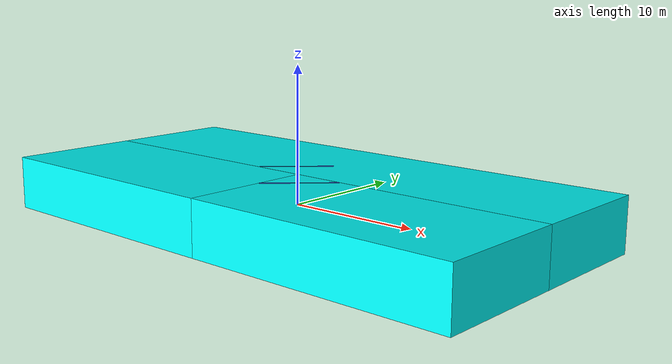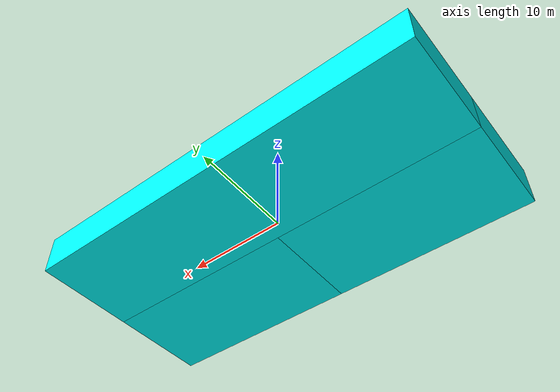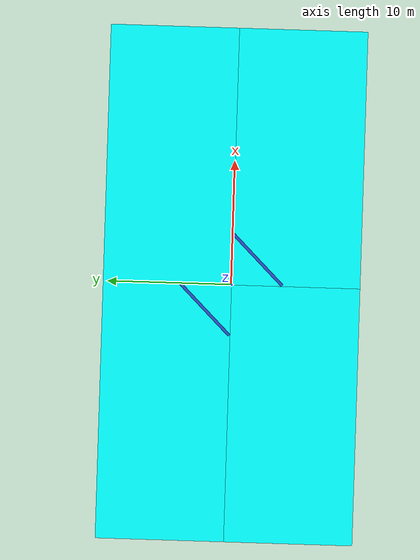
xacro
<?xml version="1.0"?>
<robot name="arena1" xmlns:xacro="http://www.ros.org/wiki/xacro">
  <xacro:include filename="$(find turtlebot3_description)/urdf/arena.gazebo.xacro"/>

<!-- #Create Cuboid -->
<xacro:macro name="cuboid" params="name origin_xyz origin_rpy m l b h">
  <link name="${name}">

   <inertial>
     <origin rpy="${origin_rpy}" xyz="${origin_xyz}" />
     <mass value="${m}"/>
     <inertia ixx="${m*((b*b) + (h*h))/12}"  ixy="0"  ixz="0" iyy="${m*((l*l) + (h*h))/12}" iyz="0" izz="${m*((b*b) + (l*l))/12}" />
   </inertial>

   <visual>
     <origin rpy="${origin_rpy}" xyz="${origin_xyz}" />
     <geometry>
       <box size="${l} ${b} ${h}" />
     </geometry>
     <material name="Cyan">
       <color rgba="0 1.0 1.0 1.0"/>
     </material>
   </visual>

   <collision>
    <origin rpy="${origin_rpy}" xyz="${origin_xyz}" />
    <geometry>
       <box size="${l} ${b} ${h}" />
     </geometry>
   </collision>
  </link>

</xacro:macro>

<!-- Create cylinder -->
<xacro:macro name="cylinderical" params="name origin_xyz origin_rpy m l r">
  <link name="${name}">
       <visual>
        <origin rpy="${origin_rpy}" xyz="${origin_xyz}" />
         <geometry>
           <cylinder length="${l}" radius="${r}"/>
         </geometry>
         <material name="blue">
         </material>
       </visual>
       <collision>
        <origin rpy="${origin_rpy}" xyz="${origin_xyz}" />
         <geometry>
           <cylinder length="${l}" radius="${r}"/>
         </geometry>
          <surface>
            <friction>
              <ode>
                <mu>10000</mu>
                <mu2>10000</mu2>
                <slip1>1.0</slip1>
                <slip2>1.0</slip2>
                <kp value="1000" />
                <kd value="1000" />
              </ode>
            </friction>
          </surface>
       </collision>
       <inertial>
        <origin rpy="${origin_rpy}" xyz="${origin_xyz}" />
         <mass value="${m}"/>
         <inertia ixx="${m*((3*r*r) + (l*l))/12}" ixy="0.0" ixz="0.0" iyy="${m*((3*l*l) + (l*l))/12}" iyz="0.0" izz="${m*l*l/12}"/>
       </inertial>
     </link>

</xacro:macro>

<!-- joints -->
  <xacro:macro name="calljoint" params="name type axis_xyz origin_rpy origin_xyz parent child">
    <joint name="${name}" type="${type}">
      <parent link="${parent}" />
      <child link="${child}" />
      <axis xyz="${axis_xyz}" />
      <limit effort="1000.0" lower="-3.14" upper="3.14" velocity="0.5" />
      <dynamics damping="0.0" friction="0.0"/>
      <origin rpy="${origin_rpy}" xyz="${origin_xyz}" />
    </joint>
  </xacro:macro>

<xacro:cuboid name="plate1" origin_xyz="0 5 0.2" origin_rpy="0 0 0" m="50" l="40" b="10" h="4" />
<xacro:cuboid name="3rd_quad" origin_xyz="-5 -5 0.2" origin_rpy="0 0 0" m="50" l="20" b="10" h="4" />
<xacro:cuboid name="4th_quad" origin_xyz="5 -5 0.2" origin_rpy="0 0 0" m="50" l="20" b="10" h="4" />
<xacro:calljoint name="joint1" type="fixed" axis_xyz="0 1 0" origin_rpy="0 0 0" origin_xyz="-5 0 0" parent="plate1" child="3rd_quad"/>
<xacro:calljoint name="joint2" type="fixed" axis_xyz="0 1 0" origin_rpy="0 0 0" origin_xyz="5 0 0" parent="plate1" child="4th_quad"/>

<xacro:cylinderical name="braker1" origin_xyz="-2 2 0.2" origin_rpy="1.5708 0 2.35619" m="10" l="5.5" r="1" />
<xacro:cylinderical name="braker2" origin_xyz="2 -2 0.2" origin_rpy="1.5708 0 2.35619" m="10" l="5.5" r="1" />

<xacro:calljoint name="road_braker1" type="fixed" axis_xyz="0 1 0" origin_rpy="0 0 0" origin_xyz="0 0 1.015" parent="plate1" child="braker1"/>
<xacro:calljoint name="road_braker2" type="fixed" axis_xyz="0 1 0" origin_rpy="0 0 0" origin_xyz="0 0 1.015" parent="plate1" child="braker2"/>

</robot>
